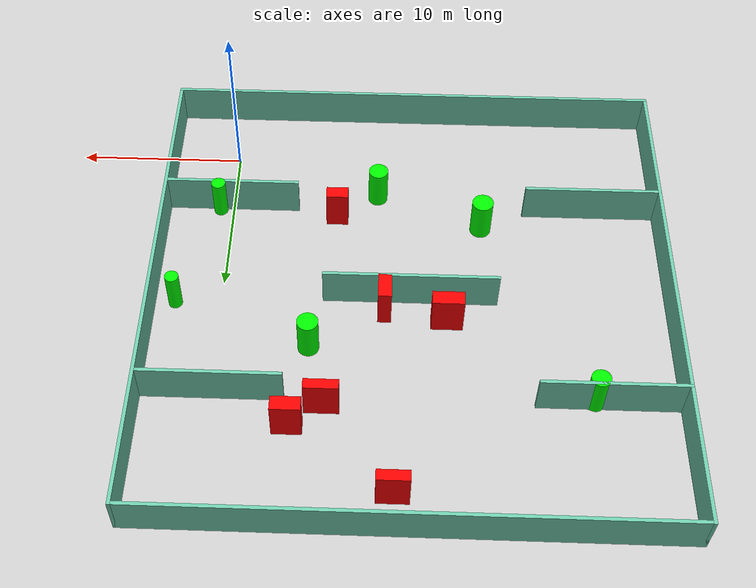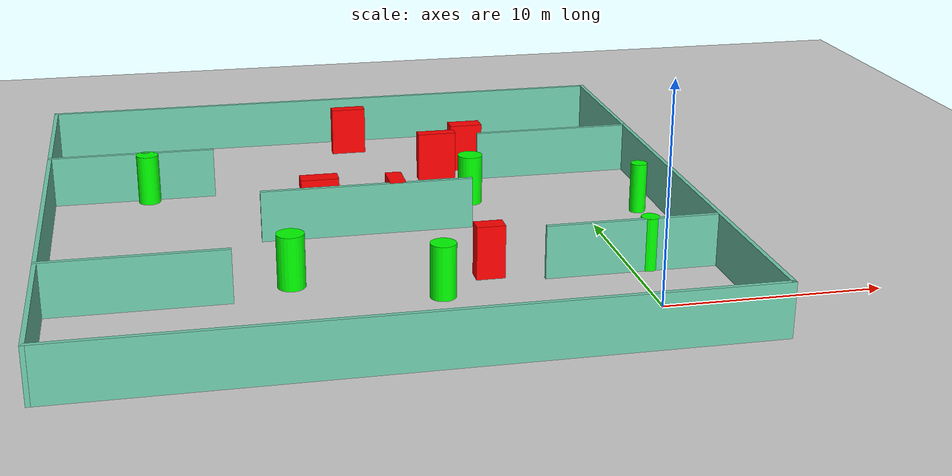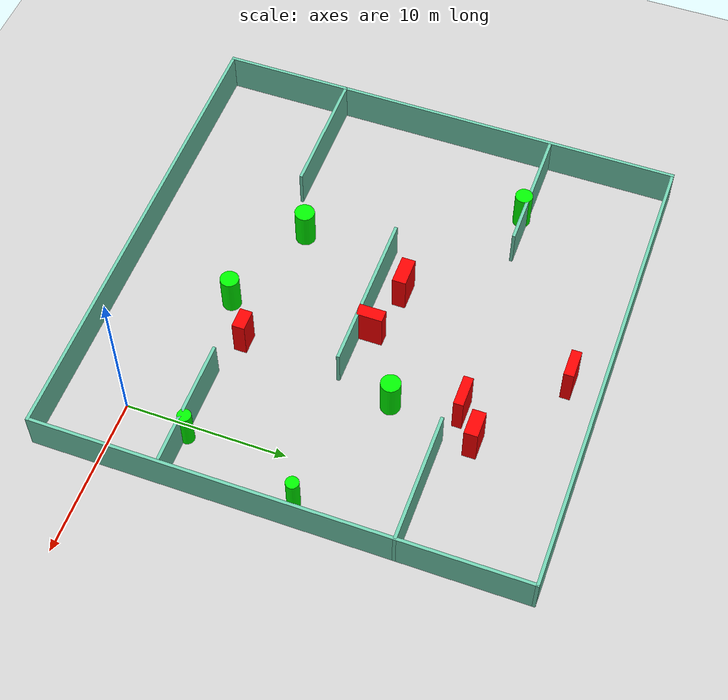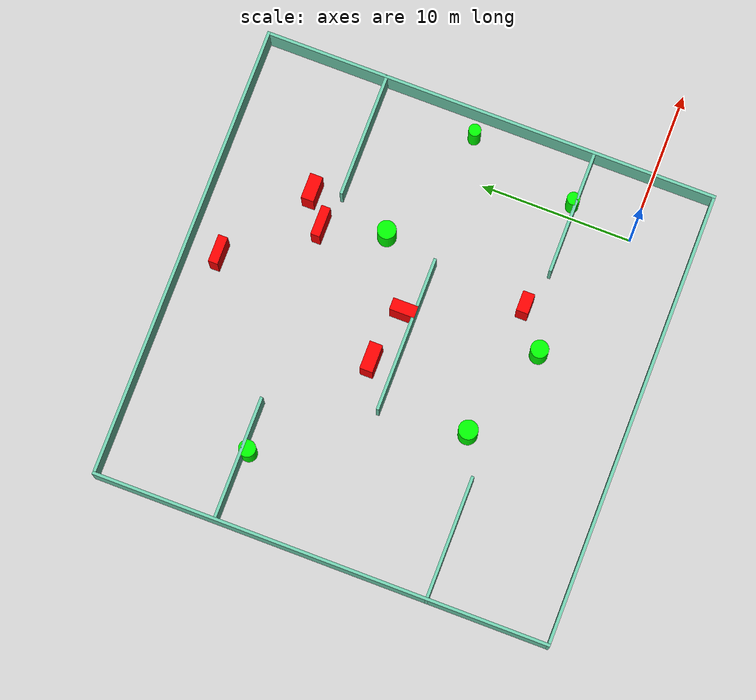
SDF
<sdf version="1.7">
 <world name="default">
  <light name="sun" type="directional">
   <pose>0 0 10 0 -0 0</pose>
   <diffuse>0.8 0.8 0.8 1</diffuse>
   <specular>0.2 0.2 0.2 1</specular>
   <attenuation>
    <range>1000</range>
    <constant>0.9</constant>
    <linear>0.01</linear>
    <quadratic>0.001</quadratic>
   </attenuation>
   <direction>-0.5 0.1 -0.9</direction>
   <spot><inner_angle>0</inner_angle><outer_angle>0</outer_angle><falloff>0</falloff></spot>
  </light>
  <model name="ground_plane">
   <static>1</static>
   <link name="link">
    <collision name="collision">
     <geometry><plane><normal>0 0 1</normal><size>100 100</size></plane></geometry>
     <surface>
      <contact><collide_bitmask>65535</collide_bitmask></contact>
      <friction><ode><mu>100</mu><mu2>50</mu2></ode></friction>
     </surface>
    </collision>
    <visual name="visual">
     <cast_shadows>0</cast_shadows>
     <geometry><plane><normal>0 0 1</normal><size>100 100</size></plane></geometry>
     <material>
      <script><uri>file://media/materials/scripts/gazebo.material</uri><name>Gazebo/Grey</name></script>
     </material>
    </visual>
   </link>
  </model>
  <gravity>0 0 -9.8</gravity>
  <magnetic_field>6e-06 2.3e-05 -4.2e-05</magnetic_field>
  <atmosphere type="adiabatic"/>
  <physics type="ode">
   <max_step_size>0.001</max_step_size>
   <real_time_factor>1</real_time_factor>
   <real_time_update_rate>1000</real_time_update_rate>
  </physics>
  <scene><ambient>0.4 0.4 0.4 1</ambient><background>0.7 0.7 0.7 1</background><shadows>1</shadows></scene>
  <spherical_coordinates>
   <surface_model>EARTH_WGS84</surface_model>
   <latitude_deg>0</latitude_deg>
   <longitude_deg>0</longitude_deg>
   <elevation>0</elevation>
   <heading_deg>0</heading_deg>
  </spherical_coordinates>
  <model name="my_base_walls">
   <link name="Wall_10">
    <collision name="Wall_10_Collision">
     <geometry><box><size>8.2 0.2 2.5</size></box></geometry>
     <pose>0 0 1.25 0 -0 0</pose>
    </collision>
    <visual name="Wall_10_Visual">
     <pose>0 0 1.25 0 -0 0</pose>
     <geometry><box><size>8.2 0.2 2.5</size></box></geometry>
     <material>
      <script><uri>file://media/materials/scripts/gazebo.material</uri><name>Gazebo/Grey</name></script>
      <ambient>0.435294 0.796078 0.67451 1</ambient>
     </material>
     <meta><layer>0</layer></meta>
    </visual>
    <pose>-11 -7 0 0 -0 0</pose>
   </link>
   <link name="Wall_12">
    <collision name="Wall_12_Collision">
     <geometry><box><size>8.2 0.2 2.5</size></box></geometry>
     <pose>0 0 1.25 0 -0 0</pose>
    </collision>
    <visual name="Wall_12_Visual">
     <pose>0 0 1.25 0 -0 0</pose>
     <geometry><box><size>8.2 0.2 2.5</size></box></geometry>
     <material>
      <script><uri>file://media/materials/scripts/gazebo.material</uri><name>Gazebo/Grey</name></script>
      <ambient>0.435294 0.796078 0.67451 1</ambient>
     </material>
     <meta><layer>0</layer></meta>
    </visual>
    <pose>-11 7 0 0 -0 0</pose>
   </link>
   <link name="Wall_14">
    <collision name="Wall_14_Collision">
     <geometry><box><size>8.2 0.2 2.5</size></box></geometry>
     <pose>0 0 1.25 0 -0 0</pose>
    </collision>
    <visual name="Wall_14_Visual">
     <pose>0 0 1.25 0 -0 0</pose>
     <geometry><box><size>8.2 0.2 2.5</size></box></geometry>
     <material>
      <script><uri>file://media/materials/scripts/gazebo.material</uri><name>Gazebo/Grey</name></script>
      <ambient>0.435294 0.796078 0.67451 1</ambient>
     </material>
     <meta><layer>0</layer></meta>
    </visual>
    <pose>11 7 0 0 -0 3.14159</pose>
   </link>
   <link name="Wall_16">
    <collision name="Wall_16_Collision">
     <geometry><box><size>10.2 0.2 2.5</size></box></geometry>
     <pose>0 0 1.25 0 -0 0</pose>
    </collision>
    <visual name="Wall_16_Visual">
     <pose>0 0 1.25 0 -0 0</pose>
     <geometry><box><size>10.2 0.2 2.5</size></box></geometry>
     <material>
      <script><uri>file://media/materials/scripts/gazebo.material</uri><name>Gazebo/Grey</name></script>
      <ambient>0.435294 0.796078 0.67451 1</ambient>
     </material>
     <meta><layer>0</layer></meta>
    </visual>
    <pose>0 0 0 0 -0 3.14159</pose>
   </link>
   <link name="Wall_2">
    <collision name="Wall_2_Collision">
     <geometry><box><size>30.2 0.2 2.5</size></box></geometry>
     <pose>0 0 1.25 0 -0 0</pose>
    </collision>
    <visual name="Wall_2_Visual">
     <pose>0 0 1.25 0 -0 0</pose>
     <geometry><box><size>30.2 0.2 2.5</size></box></geometry>
     <material>
      <script><uri>file://media/materials/scripts/gazebo.material</uri><name>Gazebo/Grey</name></script>
      <ambient>0.435294 0.796078 0.67451 1</ambient>
     </material>
     <meta><layer>0</layer></meta>
    </visual>
    <pose>0 -15 0 0 -0 3.14159</pose>
   </link>
   <link name="Wall_3">
    <collision name="Wall_3_Collision">
     <geometry><box><size>30.2 0.2 2.5</size></box></geometry>
     <pose>0 0 1.25 0 -0 0</pose>
    </collision>
    <visual name="Wall_3_Visual">
     <pose>0 0 1.25 0 -0 0</pose>
     <geometry><box><size>30.2 0.2 2.5</size></box></geometry>
     <material>
      <script><uri>file://media/materials/scripts/gazebo.material</uri><name>Gazebo/Grey</name></script>
      <ambient>0.435294 0.796078 0.67451 1</ambient>
     </material>
     <meta><layer>0</layer></meta>
    </visual>
    <pose>-15 0 0 0 -0 1.5708</pose>
   </link>
   <link name="Wall_4">
    <collision name="Wall_4_Collision">
     <geometry><box><size>30.2 0.2 2.5</size></box></geometry>
     <pose>0 0 1.25 0 -0 0</pose>
    </collision>
    <visual name="Wall_4_Visual">
     <pose>0 0 1.25 0 -0 0</pose>
     <geometry><box><size>30.2 0.2 2.5</size></box></geometry>
     <material>
      <script><uri>file://media/materials/scripts/gazebo.material</uri><name>Gazebo/Grey</name></script>
      <ambient>0.435294 0.796078 0.67451 1</ambient>
     </material>
     <meta><layer>0</layer></meta>
    </visual>
    <pose>0 15 0 0 -0 0</pose>
   </link>
   <link name="Wall_6">
    <collision name="Wall_6_Collision">
     <geometry><box><size>30.2 0.2 2.5</size></box></geometry>
     <pose>0 0 1.25 0 -0 0</pose>
    </collision>
    <visual name="Wall_6_Visual">
     <pose>0 0 1.25 0 -0 0</pose>
     <geometry><box><size>30.2 0.2 2.5</size></box></geometry>
     <material>
      <script><uri>file://media/materials/scripts/gazebo.material</uri><name>Gazebo/Grey</name></script>
      <ambient>0.435294 0.796078 0.67451 1</ambient>
     </material>
     <meta><layer>0</layer></meta>
    </visual>
    <pose>15 0 0 0 -0 1.5708</pose>
   </link>
   <link name="Wall_8">
    <collision name="Wall_8_Collision">
     <geometry><box><size>8.2 0.2 2.5</size></box></geometry>
     <pose>0 0 1.25 0 -0 0</pose>
    </collision>
    <visual name="Wall_8_Visual">
     <pose>0 0 1.25 0 -0 0</pose>
     <geometry><box><size>8.2 0.2 2.5</size></box></geometry>
     <material>
      <script><uri>file://media/materials/scripts/gazebo.material</uri><name>Gazebo/Grey</name></script>
      <ambient>0.435294 0.796078 0.67451 1</ambient>
     </material>
     <meta><layer>0</layer></meta>
    </visual>
    <pose>11 -7 0 0 -0 3.14159</pose>
   </link>
   <static>1</static>
   <pose>-11 11 0 0 -0 0</pose>
  </model>
  <model name="cylinder1">
   <static>1</static>
   <link name="link">
    <inertial>
     <mass>1</mass>
     <inertia><ixx>0.5</ixx><ixy>0</ixy><ixz>0</ixz><iyy>0.5</iyy><iyz>0</iyz><izz>1</izz></inertia>
    </inertial>
    <collision name="collision">
     <geometry><cylinder><radius>0.5842172461110706</radius><length>2.5</length></cylinder></geometry>
    </collision>
    <visual name="visual">
     <geometry><cylinder><radius>0.5842172461110706</radius><length>2.5</length></cylinder></geometry>
     <material>
      <ambient>0 1 0 1</ambient>
      <diffuse>0 1 0 1</diffuse>
      <specular>0.1 0.1 0.1 1</specular>
      <emissive>0 0 0 0</emissive>
     </material>
    </visual>
   </link>
   <pose>-8.957783182019034 2.892205548782707 1.25 0 0 0</pose>
  </model>
  <model name="cylinder2">
   <static>1</static>
   <link name="link">
    <inertial>
     <mass>1</mass>
     <inertia><ixx>0.5</ixx><ixy>0</ixy><ixz>0</ixz><iyy>0.5</iyy><iyz>0</iyz><izz>1</izz></inertia>
    </inertial>
    <collision name="collision">
     <geometry><cylinder><radius>0.6328688911956557</radius><length>2.5</length></cylinder></geometry>
    </collision>
    <visual name="visual">
     <geometry><cylinder><radius>0.6328688911956557</radius><length>2.5</length></cylinder></geometry>
     <material>
      <ambient>0 1 0 1</ambient>
      <diffuse>0 1 0 1</diffuse>
      <specular>0.1 0.1 0.1 1</specular>
      <emissive>0 0 0 0</emissive>
     </material>
    </visual>
   </link>
   <pose>-15.280447228926928 5.277276345242264 1.25 0 0 0</pose>
  </model>
  <model name="cylinder3">
   <static>1</static>
   <link name="link">
    <inertial>
     <mass>1</mass>
     <inertia><ixx>0.5</ixx><ixy>0</ixy><ixz>0</ixz><iyy>0.5</iyy><iyz>0</iyz><izz>1</izz></inertia>
    </inertial>
    <collision name="collision">
     <geometry><cylinder><radius>0.42264078130934496</radius><length>2.5</length></cylinder></geometry>
    </collision>
    <visual name="visual">
     <geometry><cylinder><radius>0.42264078130934496</radius><length>2.5</length></cylinder></geometry>
     <material>
      <ambient>0 1 0 1</ambient>
      <diffuse>0 1 0 1</diffuse>
      <specular>0.1 0.1 0.1 1</specular>
      <emissive>0 0 0 0</emissive>
     </material>
    </visual>
   </link>
   <pose>0.7771437705610289 4.229993236741754 1.25 0 0 0</pose>
  </model>
  <model name="cylinder4">
   <static>1</static>
   <link name="link">
    <inertial>
     <mass>1</mass>
     <inertia><ixx>0.5</ixx><ixy>0</ixy><ixz>0</ixz><iyy>0.5</iyy><iyz>0</iyz><izz>1</izz></inertia>
    </inertial>
    <collision name="collision">
     <geometry><cylinder><radius>0.5517942633298833</radius><length>2.5</length></cylinder></geometry>
    </collision>
    <visual name="visual">
     <geometry><cylinder><radius>0.5517942633298833</radius><length>2.5</length></cylinder></geometry>
     <material>
      <ambient>0 1 0 1</ambient>
      <diffuse>0 1 0 1</diffuse>
      <specular>0.1 0.1 0.1 1</specular>
      <emissive>0 0 0 0</emissive>
     </material>
    </visual>
   </link>
   <pose>-21.21339451895105 17.685526386389355 1.25 0 0 0</pose>
  </model>
  <model name="cylinder5">
   <static>1</static>
   <link name="link">
    <inertial>
     <mass>1</mass>
     <inertia><ixx>0.5</ixx><ixy>0</ixy><ixz>0</ixz><iyy>0.5</iyy><iyz>0</iyz><izz>1</izz></inertia>
    </inertial>
    <collision name="collision">
     <geometry><cylinder><radius>0.40396386277232127</radius><length>2.5</length></cylinder></geometry>
    </collision>
    <visual name="visual">
     <geometry><cylinder><radius>0.40396386277232127</radius><length>2.5</length></cylinder></geometry>
     <material>
      <ambient>0 1 0 1</ambient>
      <diffuse>0 1 0 1</diffuse>
      <specular>0.1 0.1 0.1 1</specular>
      <emissive>0 0 0 0</emissive>
     </material>
    </visual>
   </link>
   <pose>2.709082906525552 11.57000998348129 1.25 0 0 0</pose>
  </model>
  <model name="cylinder6">
   <static>1</static>
   <link name="link">
    <inertial>
     <mass>1</mass>
     <inertia><ixx>0.5</ixx><ixy>0</ixy><ixz>0</ixz><iyy>0.5</iyy><iyz>0</iyz><izz>1</izz></inertia>
    </inertial>
    <collision name="collision">
     <geometry><cylinder><radius>0.6119419282793811</radius><length>2.5</length></cylinder></geometry>
    </collision>
    <visual name="visual">
     <geometry><cylinder><radius>0.6119419282793811</radius><length>2.5</length></cylinder></geometry>
     <material>
      <ambient>0 1 0 1</ambient>
      <diffuse>0 1 0 1</diffuse>
      <specular>0.1 0.1 0.1 1</specular>
      <emissive>0 0 0 0</emissive>
     </material>
    </visual>
   </link>
   <pose>-5.243182626373823 14.497925630685 1.25 0 0 0</pose>
  </model>
  <model name="box1">
   <static>1</static>
   <link name="link">
    <inertial>
     <mass>1</mass>
     <inertia><ixx>0.083</ixx><ixy>0</ixy><ixz>0</ixz><iyy>0.083</iyy><iyz>0</iyz><izz>0.083</izz></inertia>
    </inertial>
    <collision name="collision">
     <geometry><box><size>1.3172773812348084 0.7873379735208084 2.5</size></box></geometry>
    </collision>
    <visual name="visual">
     <geometry><box><size>1.3172773812348084 0.7873379735208084 2.5</size></box></geometry>
     <material>
      <ambient>1 0 0 1</ambient>
      <diffuse>1 0 0 1</diffuse>
      <specular>0.1 0.1 0.1 1</specular>
      <emissive>0 0 0 0</emissive>
     </material>
    </visual>
    <sensor name="my_contact" type="contact">
     <contact><collision>box_collision</collision><topic>__default_topic__</topic></contact>
    </sensor>
   </link>
   <pose>-6.500958973918738 4.742764836217944 1.25 0 0 0</pose>
  </model>
  <model name="box2">
   <static>1</static>
   <link name="link">
    <inertial>
     <mass>1</mass>
     <inertia><ixx>0.083</ixx><ixy>0</ixy><ixz>0</ixz><iyy>0.083</iyy><iyz>0</iyz><izz>0.083</izz></inertia>
    </inertial>
    <collision name="collision">
     <geometry><box><size>1.9648808713155645 0.6061603971352005 2.5</size></box></geometry>
    </collision>
    <visual name="visual">
     <geometry><box><size>1.9648808713155645 0.6061603971352005 2.5</size></box></geometry>
     <material>
      <ambient>1 0 0 1</ambient>
      <diffuse>1 0 0 1</diffuse>
      <specular>0.1 0.1 0.1 1</specular>
      <emissive>0 0 0 0</emissive>
     </material>
    </visual>
    <sensor name="my_contact" type="contact">
     <contact><collision>box_collision</collision><topic>__default_topic__</topic></contact>
    </sensor>
   </link>
   <pose>-6.190365857923394 18.57527038078259 1.25 0 0 0</pose>
  </model>
  <model name="box3">
   <static>1</static>
   <link name="link">
    <inertial>
     <mass>1</mass>
     <inertia><ixx>0.083</ixx><ixy>0</ixy><ixz>0</ixz><iyy>0.083</iyy><iyz>0</iyz><izz>0.083</izz></inertia>
    </inertial>
    <collision name="collision">
     <geometry><box><size>1.6772152940424125 0.839983893176405 2.5</size></box></geometry>
    </collision>
    <visual name="visual">
     <geometry><box><size>1.6772152940424125 0.839983893176405 2.5</size></box></geometry>
     <material>
      <ambient>1 0 0 1</ambient>
      <diffuse>1 0 0 1</diffuse>
      <specular>0.1 0.1 0.1 1</specular>
      <emissive>0 0 0 0</emissive>
     </material>
    </visual>
    <sensor name="my_contact" type="contact">
     <contact><collision>box_collision</collision><topic>__default_topic__</topic></contact>
    </sensor>
   </link>
   <pose>-4.370930740056981 19.855492818437526 1.25 0 0 0</pose>
  </model>
  <model name="box4">
   <static>1</static>
   <link name="link">
    <inertial>
     <mass>1</mass>
     <inertia><ixx>0.083</ixx><ixy>0</ixy><ixz>0</ixz><iyy>0.083</iyy><iyz>0</iyz><izz>0.083</izz></inertia>
    </inertial>
    <collision name="collision">
     <geometry><box><size>0.7787256764040325 1.6596340656518564 2.5</size></box></geometry>
    </collision>
    <visual name="visual">
     <geometry><box><size>0.7787256764040325 1.6596340656518564 2.5</size></box></geometry>
     <material>
      <ambient>1 0 0 1</ambient>
      <diffuse>1 0 0 1</diffuse>
      <specular>0.1 0.1 0.1 1</specular>
      <emissive>0 0 0 0</emissive>
     </material>
    </visual>
    <sensor name="my_contact" type="contact">
     <contact><collision>box_collision</collision><topic>__default_topic__</topic></contact>
    </sensor>
   </link>
   <pose>-9.516447460702885 11.73423700548784 1.25 0 0 0</pose>
  </model>
  <model name="box5">
   <static>1</static>
   <link name="link">
    <inertial>
     <mass>1</mass>
     <inertia><ixx>0.083</ixx><ixy>0</ixy><ixz>0</ixz><iyy>0.083</iyy><iyz>0</iyz><izz>0.083</izz></inertia>
    </inertial>
    <collision name="collision">
     <geometry><box><size>1.8375071941856422 0.8591523708078682 2.5</size></box></geometry>
    </collision>
    <visual name="visual">
     <geometry><box><size>1.8375071941856422 0.8591523708078682 2.5</size></box></geometry>
     <material>
      <ambient>1 0 0 1</ambient>
      <diffuse>1 0 0 1</diffuse>
      <specular>0.1 0.1 0.1 1</specular>
      <emissive>0 0 0 0</emissive>
     </material>
    </visual>
    <sensor name="my_contact" type="contact">
     <contact><collision>box_collision</collision><topic>__default_topic__</topic></contact>
    </sensor>
   </link>
   <pose>-13.126393276475374 12.542139676362146 1.25 0 0 0</pose>
  </model>
  <model name="box6">
   <static>1</static>
   <link name="link">
    <inertial>
     <mass>1</mass>
     <inertia><ixx>0.083</ixx><ixy>0</ixy><ixz>0</ixz><iyy>0.083</iyy><iyz>0</iyz><izz>0.083</izz></inertia>
    </inertial>
    <collision name="collision">
     <geometry><box><size>1.8113658416010823 0.6280238116241822 2.5</size></box></geometry>
    </collision>
    <visual name="visual">
     <geometry><box><size>1.8113658416010823 0.6280238116241822 2.5</size></box></geometry>
     <material>
      <ambient>1 0 0 1</ambient>
      <diffuse>1 0 0 1</diffuse>
      <specular>0.1 0.1 0.1 1</specular>
      <emissive>0 0 0 0</emissive>
     </material>
    </visual>
    <sensor name="my_contact" type="contact">
     <contact><collision>box_collision</collision><topic>__default_topic__</topic></contact>
    </sensor>
   </link>
   <pose>-10.151789447999896 23.93816634887448 1.25 0 0 0</pose>
  </model>
 </world>
</sdf>
